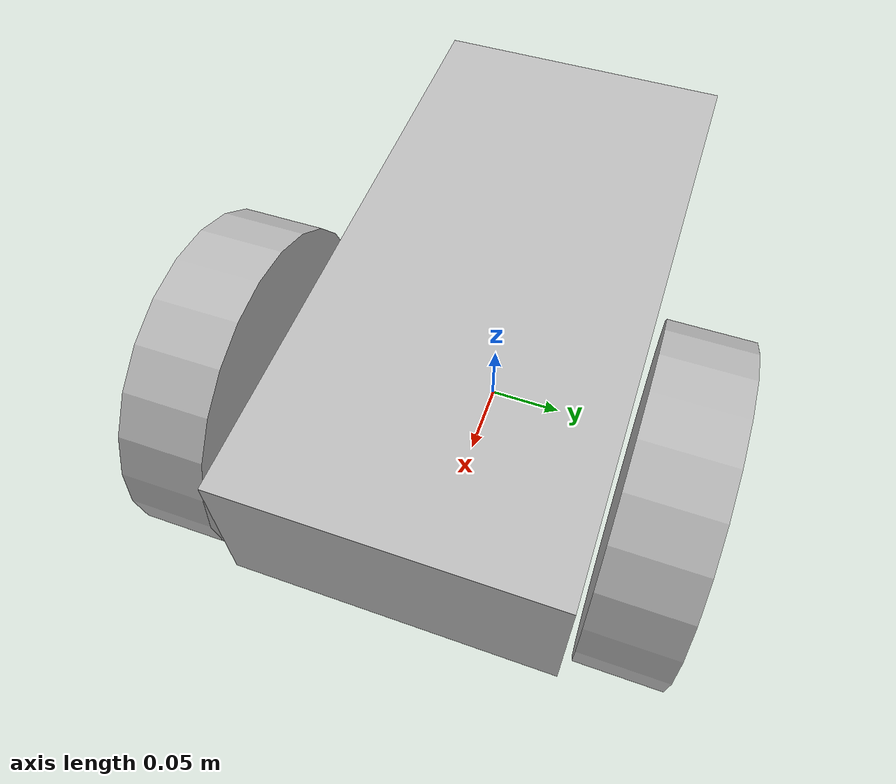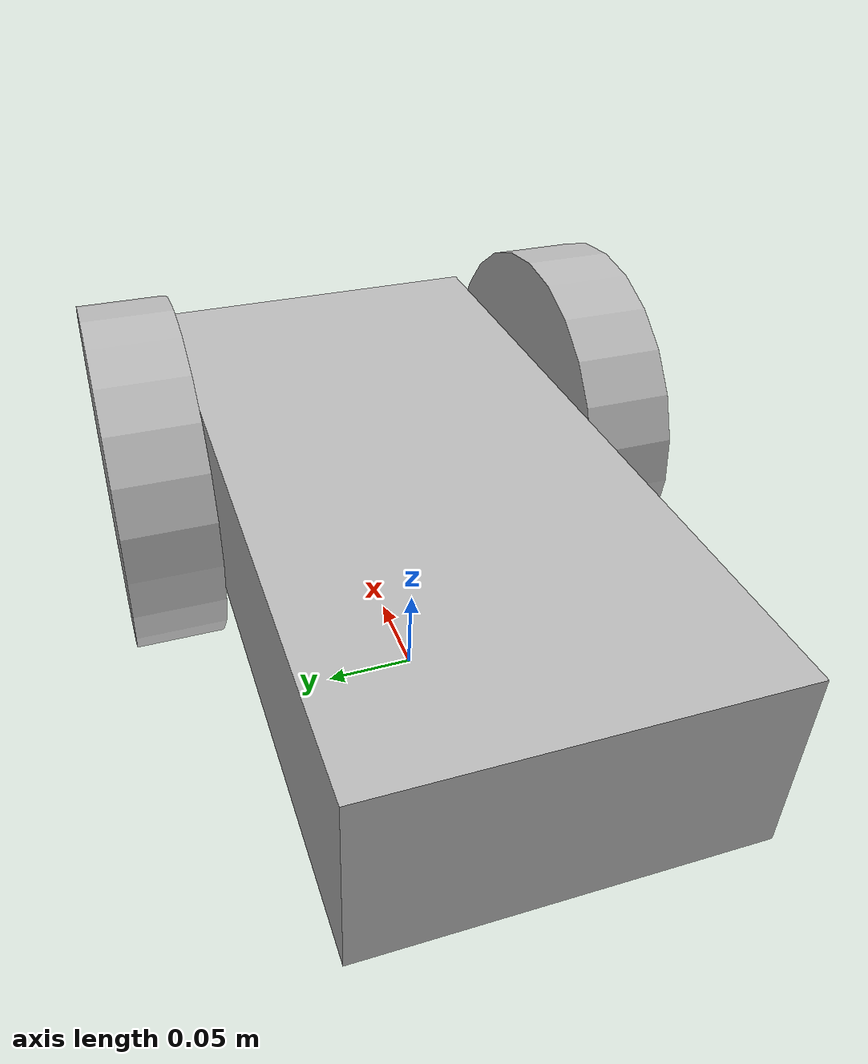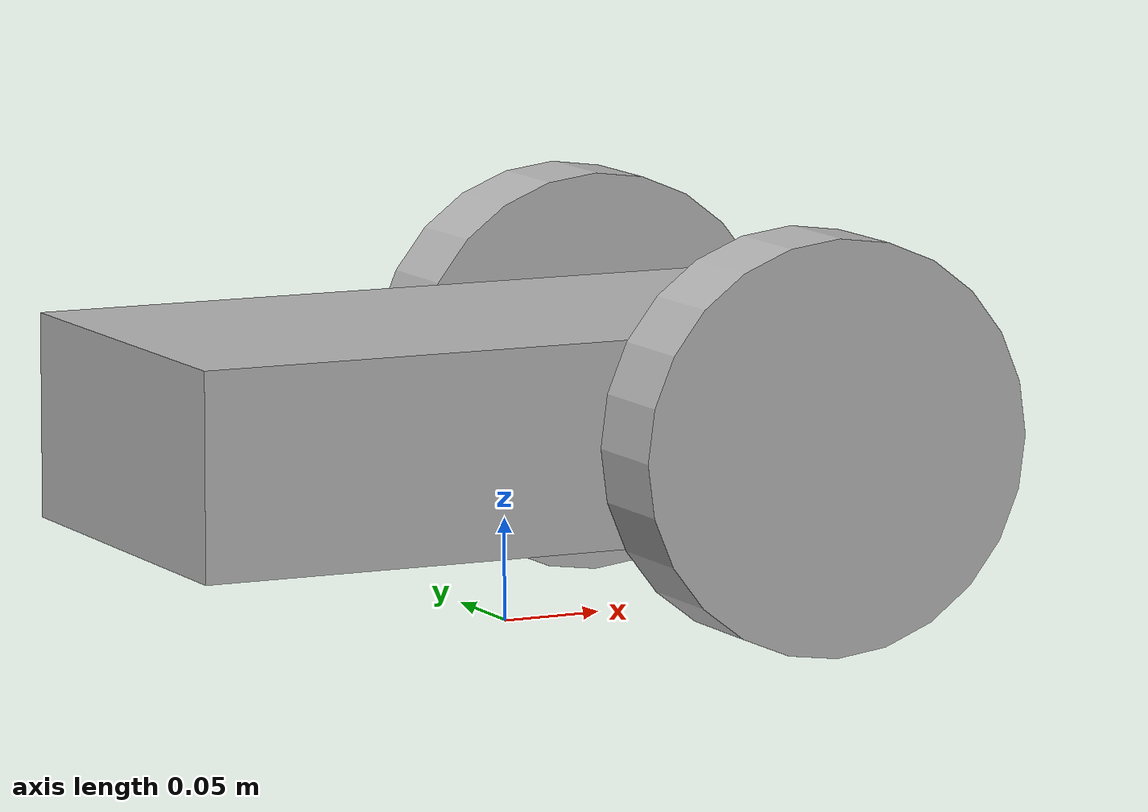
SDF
<sdf version="1.7">
    <model name="dd_robot">
         <link name='chassis'>
            <pose>0 0 .1 0 0 0</pose>

            <collision name='collision'>
              <geometry>
                <box>
                  <size>.4 .2 .1</size>
                </box>
              </geometry>
            </collision>

            <visual name='visual'>
              <geometry>
                <box>
                  <size>.4 .2 .1</size>
                </box>
              </geometry>
            </visual>
          </link>

          <collision name='caster_collision'>
            <pose>-0.15 0 -0.05 0 0 0</pose>
            <geometry>
                <sphere>
                <radius>.05</radius>
              </sphere>
            </geometry>

            <surface>
              <friction>
                <ode>
                  <mu>0</mu>
                  <mu2>0</mu2>
                  <slip1>1.0</slip1>
                  <slip2>1.0</slip2>
                </ode>
              </friction>
            </surface>
          </collision>

          <visual name='caster_visual'>
            <pose>-0.15 0 -0.05 0 0 0</pose>
            <geometry>
              <sphere>
                <radius>.05</radius>
              </sphere>
            </geometry>
          </visual>

          <link name="left_wheel">
        <pose>0.1 0.13 0.1 0 1.5707 1.5707</pose>
        <collision name="collision">
          <geometry>
            <cylinder>
              <radius>.1</radius>
              <length>.05</length>
            </cylinder>
          </geometry>
          <surface>
          <friction>
            <ode>
                <mu>1.0</mu>
                <mu2>1.0</mu2>
                <slip1>0.0</slip1>
                <slip2>0.0</slip2>
            </ode>
        </friction>
        </surface>
        </collision>
        <visual name="visual">
          <geometry>
            <cylinder>
              <radius>.1</radius>
              <length>.05</length>
            </cylinder>
          </geometry>
        </visual>
      </link>

      <link name="right_wheel">
        <pose>0.1 -0.13 0.1 0 1.5707 1.5707</pose>
        <collision name="collision">
          <geometry>
            <cylinder>
              <radius>.1</radius>
              <length>.05</length>
            </cylinder>
          </geometry>
          <surface>
          <friction>
            <ode>
                <mu>1.0</mu>
                <mu2>1.0</mu2>
                <slip1>0.0</slip1>
                <slip2>0.0</slip2>
            </ode>
        </friction>
        </surface>
        </collision>
        <visual name="visual">
          <geometry>
            <cylinder>
              <radius>.1</radius>
              <length>.05</length>
            </cylinder>
          </geometry>
        </visual>
      </link>

       <joint type="revolute" name="left_wheel_hinge">
        <pose>0 0 -0.03 0 0 0</pose>
        <child>left_wheel</child>
        <parent>chassis</parent>
        <axis>
          <xyz>0 0 1</xyz>
        </axis>
        <dynamics>
      <friction>100.0</friction>
      <spring_stiffness>0.1</spring_stiffness>
      </dynamics>
      <limit>
      <effort>0.01</effort>
      <velocity>0.005</velocity>
      </limit>
      </joint>

      <joint type="revolute" name="right_wheel_hinge">
        <pose>0 0 0.03 0 0 0</pose>
        <child>right_wheel</child>
        <parent>chassis</parent>
        <axis>
          <xyz>0 1 0</xyz>
        </axis>
        <dynamics>
      <friction>100.0</friction>
      <spring_stiffness>0.1</spring_stiffness>
      </dynamics>
      <limit>
      <effort>0.01</effort>
      <velocity>0.005</velocity>
      </limit>
      </joint>

    </model>
</sdf>
